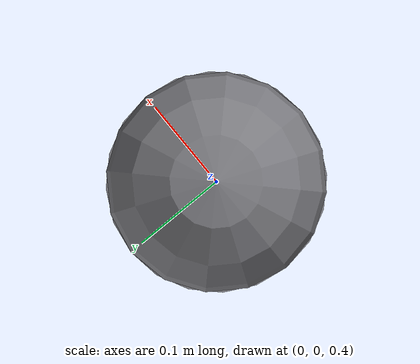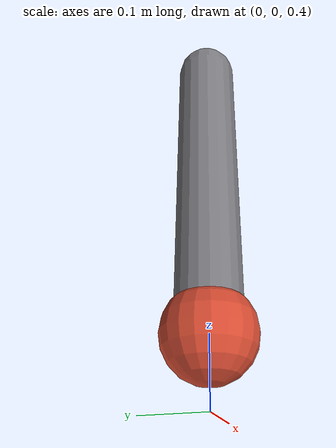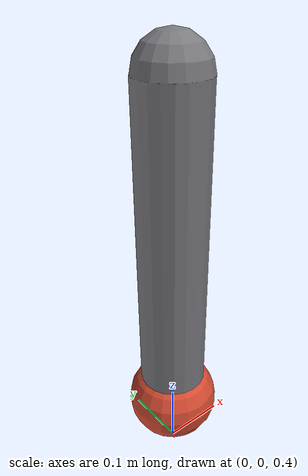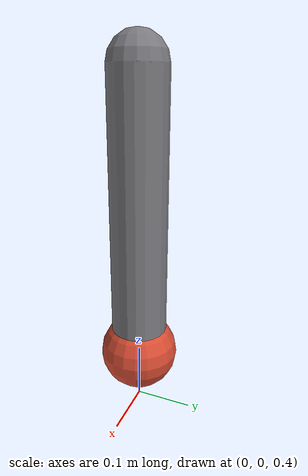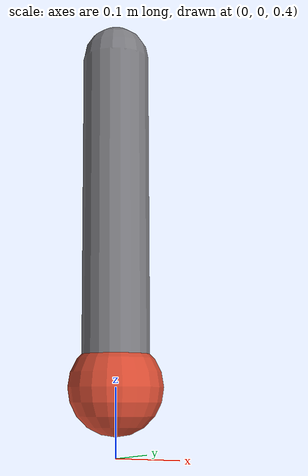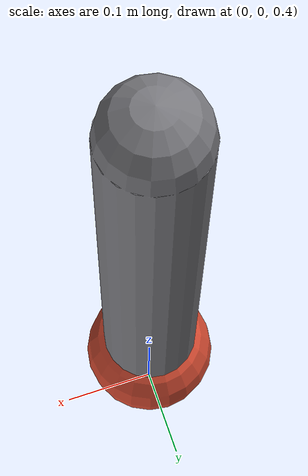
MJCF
<mujoco>
  <option timestep="0.002"/>
  <worldbody>
    <body name="pendulum" pos="0 0 1">
      <joint name="hinge" type="hinge" axis="0 1 0" damping="0.02"/>
      <geom name="rod" type="capsule" size="0.05"
            fromto="0 0 0 0 0 -0.5" mass="1"
            rgba="0.48 0.48 0.50 1"/>
      <geom name="tip" type="sphere" size="0.07"
            pos="0 0 -0.5" rgba="0.85 0.3 0.2 1"/>
    </body>
  </worldbody>
  <actuator>
    <motor joint="hinge" name="motor" ctrllimited="true" ctrlrange="-2 2"/>
  </actuator>
  <sensor>
    <jointpos joint="hinge" name="angle"/>
    <jointvel joint="hinge" name="angvel"/>
  </sensor>
</mujoco>
